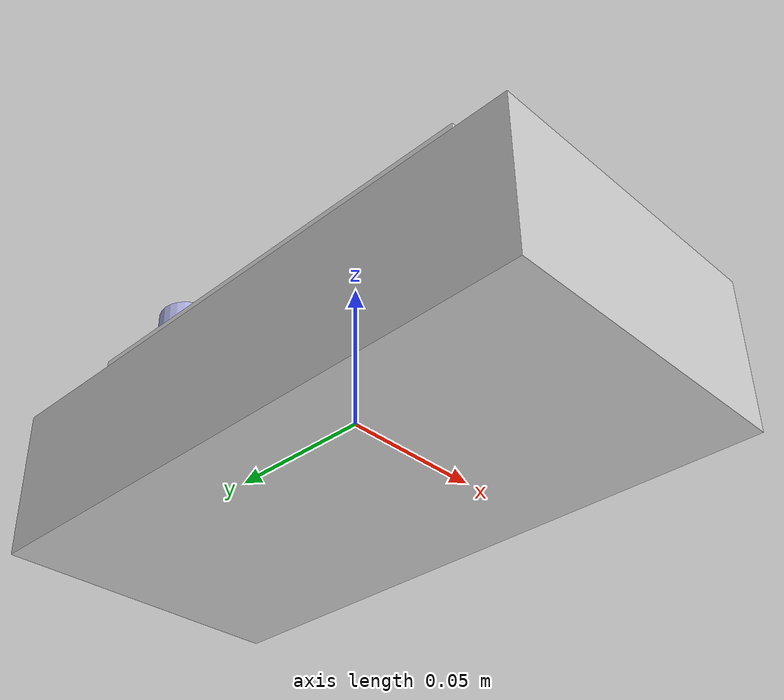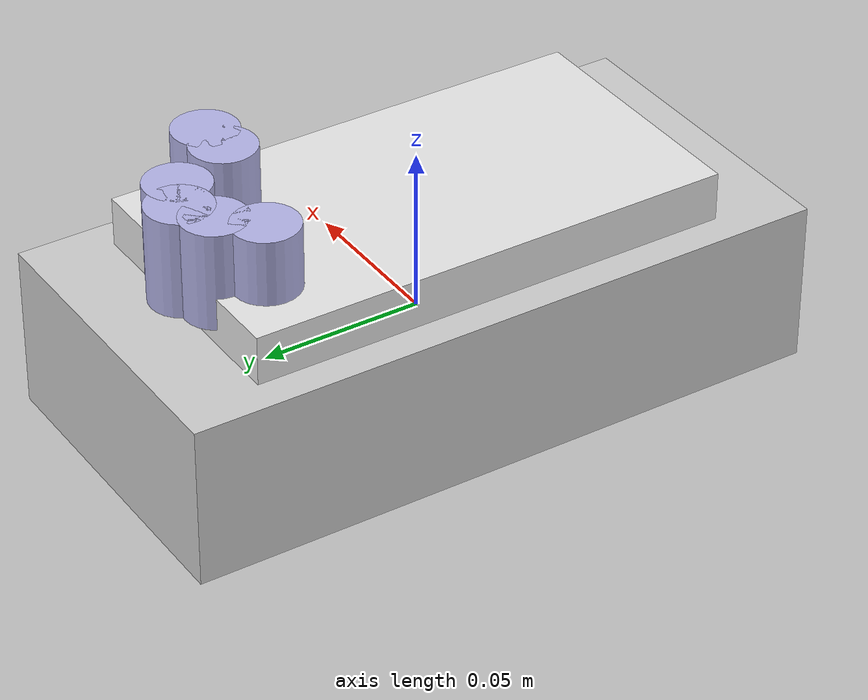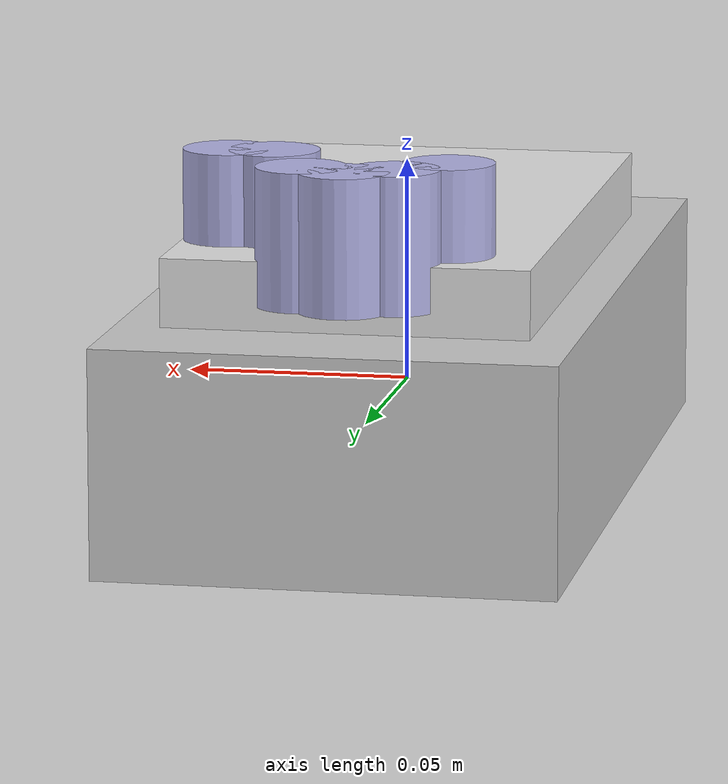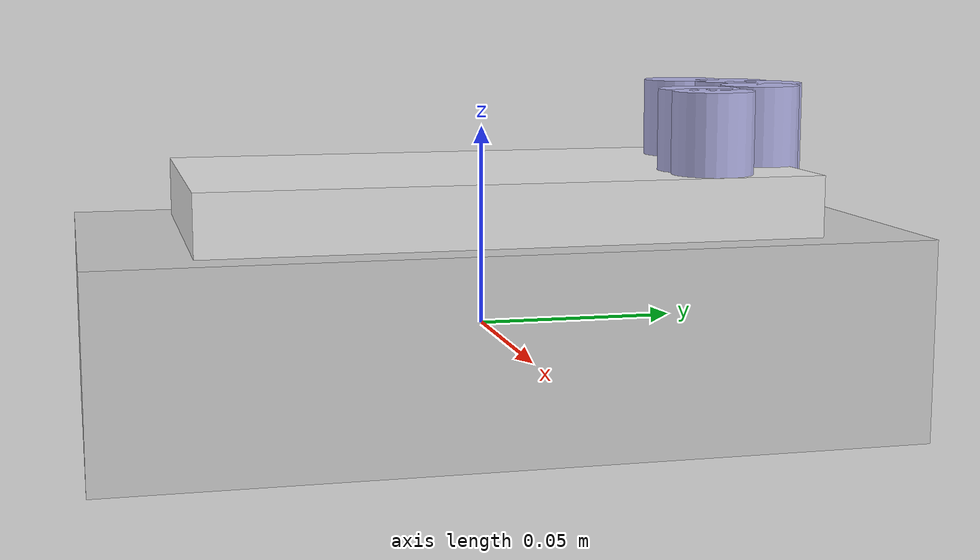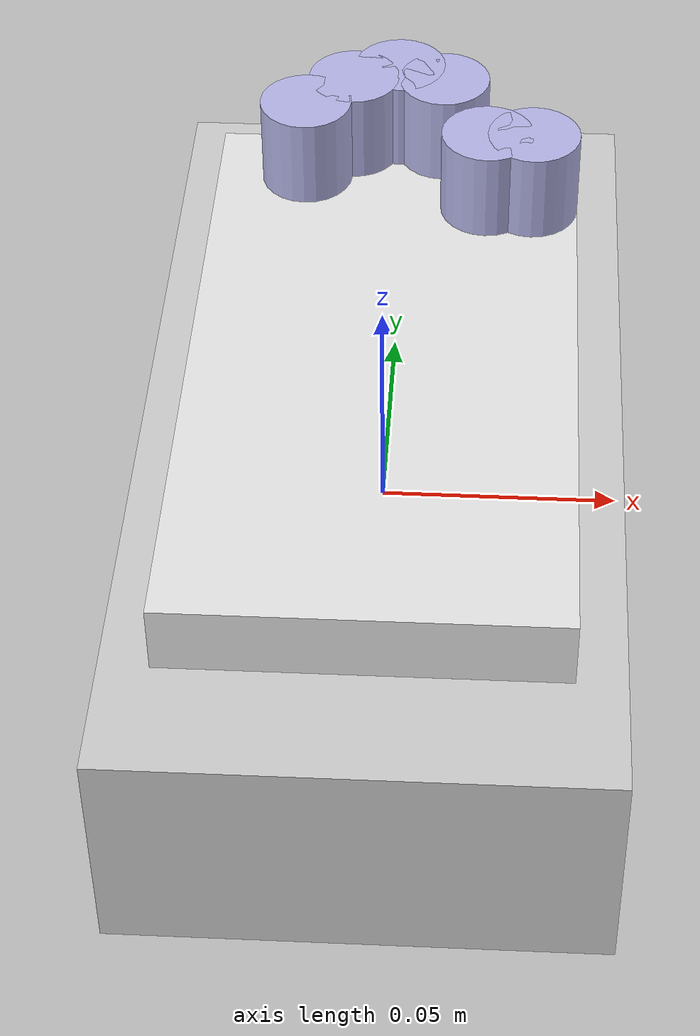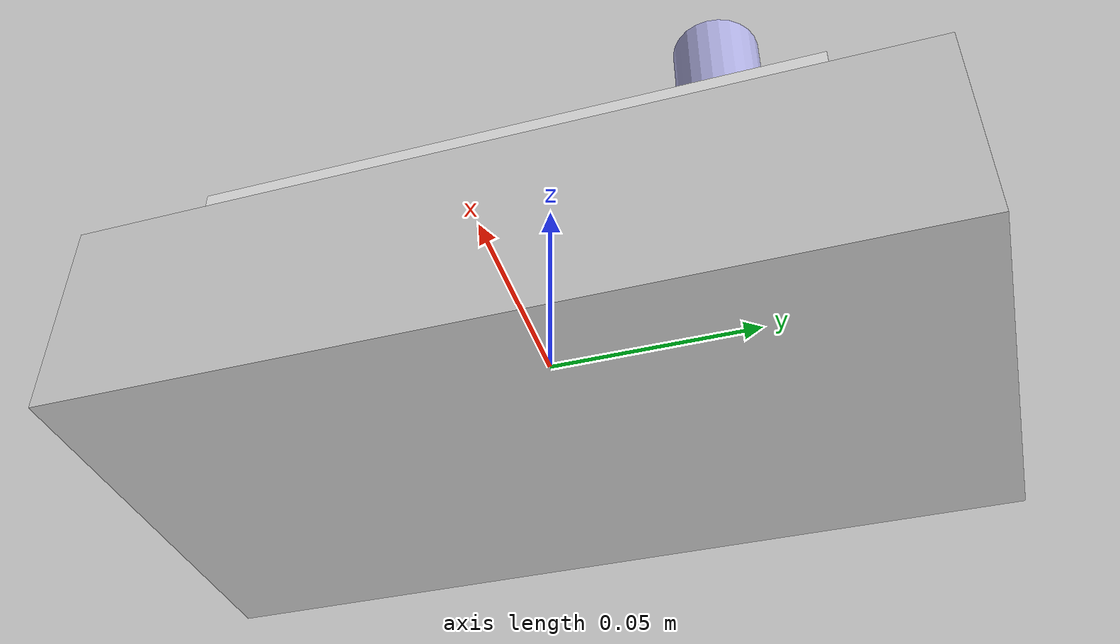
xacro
<?xml version="1.0"?>
<robot xmlns:xacro="http://www.ros.org/wiki/xacro" name="revo2_system">

  <xacro:arg name="prefix" default=""/>
  <xacro:arg name="ctrl_mode_param2_time_ms" default=""/>

  <!-- 属性定义 -->
  <xacro:property name="prefix" value="$(arg prefix)" />

  <!-- 导入 ros2_control 配置 -->
  <xacro:include filename="$(find revo2_ethercat_driver_ros2)/description/ros2_control/revo2_system.ros2_control.xacro"/>

  <!-- TODO simple definition -->
  <!-- 基础连杆 -->
  <link name="${prefix}revo2_base_link">
    <inertial>
      <origin xyz="0 0 0" rpy="0 0 0"/>
      <mass value="1.0"/>
      <inertia ixx="0.001" ixy="0.0" ixz="0.0" iyy="0.001" iyz="0.0" izz="0.001"/>
    </inertial>
    <visual>
      <origin xyz="0 0 0" rpy="0 0 0"/>
      <geometry>
        <box size="0.1 0.2 0.05"/>
      </geometry>
      <material name="base_material">
        <color rgba="0.8 0.8 0.8 1.0"/>
      </material>
    </visual>
    <collision>
      <origin xyz="0 0 0" rpy="0 0 0"/>
      <geometry>
        <box size="0.1 0.2 0.05"/>
      </geometry>
    </collision>
  </link>

  <!-- 手掌连杆 -->
  <link name="${prefix}revo2_palm_link">
    <inertial>
      <origin xyz="0 0 0" rpy="0 0 0"/>
      <mass value="0.5"/>
      <inertia ixx="0.0005" ixy="0.0" ixz="0.0" iyy="0.0005" iyz="0.0" izz="0.0005"/>
    </inertial>
    <visual>
      <origin xyz="0 0 0" rpy="0 0 0"/>
      <geometry>
        <box size="0.08 0.15 0.02"/>
      </geometry>
      <material name="palm_material">
        <color rgba="0.9 0.9 0.9 1.0"/>
      </material>
    </visual>
  </link>

  <!-- 基座到手掌的固定关节 -->
  <joint name="${prefix}base_to_palm_joint" type="fixed">
    <parent link="${prefix}revo2_base_link"/>
    <child link="${prefix}revo2_palm_link"/>
    <origin xyz="0 0 0.03" rpy="0 0 0"/>
  </joint>

  <!-- 手指关节和连杆宏定义 -->
  <xacro:macro name="finger_joint_link" params="name parent origin_xyz origin_rpy">
    <!-- 手指连杆 -->
    <link name="${prefix}${name}_link">
      <inertial>
        <origin xyz="0 0 0" rpy="0 0 0"/>
        <mass value="0.1"/>
        <inertia ixx="0.0001" ixy="0.0" ixz="0.0" iyy="0.0001" iyz="0.0" izz="0.0001"/>
      </inertial>
      <visual>
        <origin xyz="0 0 0.015" rpy="0 0 0"/>
        <geometry>
          <cylinder radius="0.01" length="0.03"/>
        </geometry>
        <material name="${name}_material">
          <color rgba="0.7 0.7 0.9 1.0"/>
        </material>
      </visual>
    </link>

    <!-- 手指关节 (revolute，可旋转) -->
    <joint name="${prefix}${name}_joint" type="revolute">
      <parent link="${prefix}${parent}_link"/>
      <child link="${prefix}${name}_link"/>
      <origin xyz="${origin_xyz}" rpy="${origin_rpy}"/>
      <axis xyz="0 0 1"/>
      <!-- 关节限制：对应 Revo2 位置范围 1-900 映射到弧度 -->
      <limit lower="0.001" upper="15.708" velocity="2.0" effort="10.0"/>
    </joint>
  </xacro:macro>

  <!-- 创建6个手指关节 -->
  <!-- 拇指尖部 -->
  <xacro:finger_joint_link name="thumb_flex" parent="revo2_palm"
                          origin_xyz="0.03 0.05 0" origin_rpy="0 0 0"/>

  <!-- 拇指根部 -->
  <xacro:finger_joint_link name="thumb_abduct" parent="revo2_palm"
                          origin_xyz="0.02 0.05 0" origin_rpy="0 0 0"/>

  <!-- 食指 -->
  <xacro:finger_joint_link name="index" parent="revo2_palm"
                          origin_xyz="0.01 0.07 0" origin_rpy="0 0 0"/>

  <!-- 中指 -->
  <xacro:finger_joint_link name="middle" parent="revo2_palm"
                          origin_xyz="0.0 0.075 0" origin_rpy="0 0 0"/>

  <!-- 无名指 -->
  <xacro:finger_joint_link name="ring" parent="revo2_palm"
                          origin_xyz="-0.01 0.07 0" origin_rpy="0 0 0"/>

  <!-- 小指 -->
  <xacro:finger_joint_link name="pinky" parent="revo2_palm"
                          origin_xyz="-0.02 0.06 0" origin_rpy="0 0 0"/>

  <!-- ros2_control 配置 -->
  <xacro:revo2_system_ros2_control
    name="revo2_joints_system"
    prefix="${prefix}"
    ctrl_mode_param2_time_ms="$(arg ctrl_mode_param2_time_ms)"
    />

</robot>
